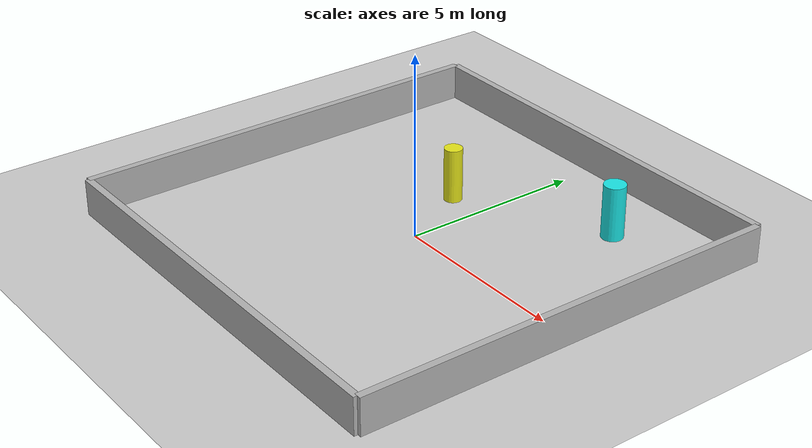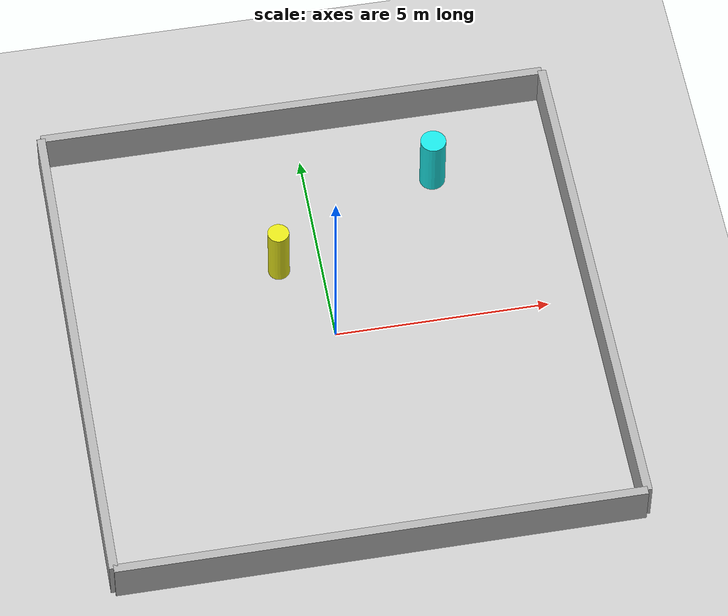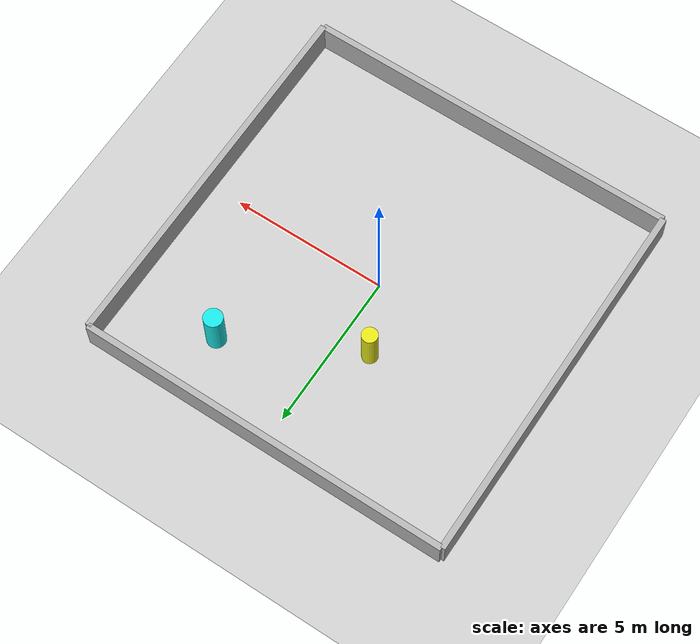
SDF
<sdf version="1.6">
 <world name="obstacle_world">
  <physics type="ode">
   <real_time_update_rate>100</real_time_update_rate>
   <max_step_size>0.01</max_step_size>
   <real_time_factor>0</real_time_factor>
  </physics>
  <include><uri>model://sun</uri></include>
  <include><uri>model://ground_plane</uri></include>
  <model name="wall_north">
   <static>true</static>
   <pose>0 6 0.5 0 0 0</pose>
   <link name="link">
    <collision name="col"><geometry><box><size>12 0.2 1</size></box></geometry></collision>
    <visual name="vis">
     <geometry><box><size>12 0.2 1</size></box></geometry>
     <material><ambient>0.7 0.7 0.7 1</ambient></material>
    </visual>
   </link>
  </model>
  <model name="wall_south">
   <static>true</static>
   <pose>0 -6 0.5 0 0 0</pose>
   <link name="link">
    <collision name="col"><geometry><box><size>12 0.2 1</size></box></geometry></collision>
    <visual name="vis">
     <geometry><box><size>12 0.2 1</size></box></geometry>
     <material><ambient>0.7 0.7 0.7 1</ambient></material>
    </visual>
   </link>
  </model>
  <model name="wall_east">
   <static>true</static>
   <pose>6 0 0.5 0 0 1.5708</pose>
   <link name="link">
    <collision name="col"><geometry><box><size>12 0.2 1</size></box></geometry></collision>
    <visual name="vis">
     <geometry><box><size>12 0.2 1</size></box></geometry>
     <material><ambient>0.7 0.7 0.7 1</ambient></material>
    </visual>
   </link>
  </model>
  <model name="wall_west">
   <static>true</static>
   <pose>-6 0 0.5 0 0 1.5708</pose>
   <link name="link">
    <collision name="col"><geometry><box><size>12 0.2 1</size></box></geometry></collision>
    <visual name="vis">
     <geometry><box><size>12 0.2 1</size></box></geometry>
     <material><ambient>0.7 0.7 0.7 1</ambient></material>
    </visual>
   </link>
  </model>
  <model name="pillar_0">
   <static>true</static>
   <pose>-1 2 0.75 0 0 0</pose>
   <link name="link">
    <collision name="col">
     <geometry><cylinder><radius>0.25</radius><length>1.5</length></cylinder></geometry>
    </collision>
    <visual name="vis">
     <geometry><cylinder><radius>0.25</radius><length>1.5</length></cylinder></geometry>
     <material><ambient>0.9 0.9 0.1 1</ambient></material>
    </visual>
   </link>
  </model>
  <model name="pillar_1">
   <static>true</static>
   <pose>3 4 0.75 0 0 0</pose>
   <link name="link">
    <collision name="col">
     <geometry><cylinder><radius>0.3</radius><length>1.5</length></cylinder></geometry>
    </collision>
    <visual name="vis">
     <geometry><cylinder><radius>0.3</radius><length>1.5</length></cylinder></geometry>
     <material><ambient>0.1 0.9 0.9 1</ambient></material>
    </visual>
   </link>
  </model>
 </world>
</sdf>
